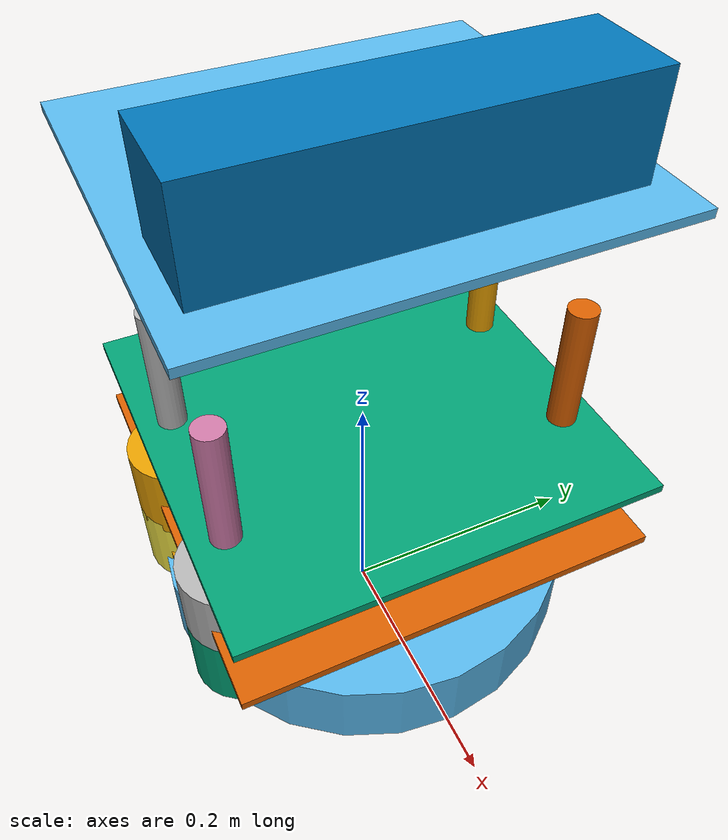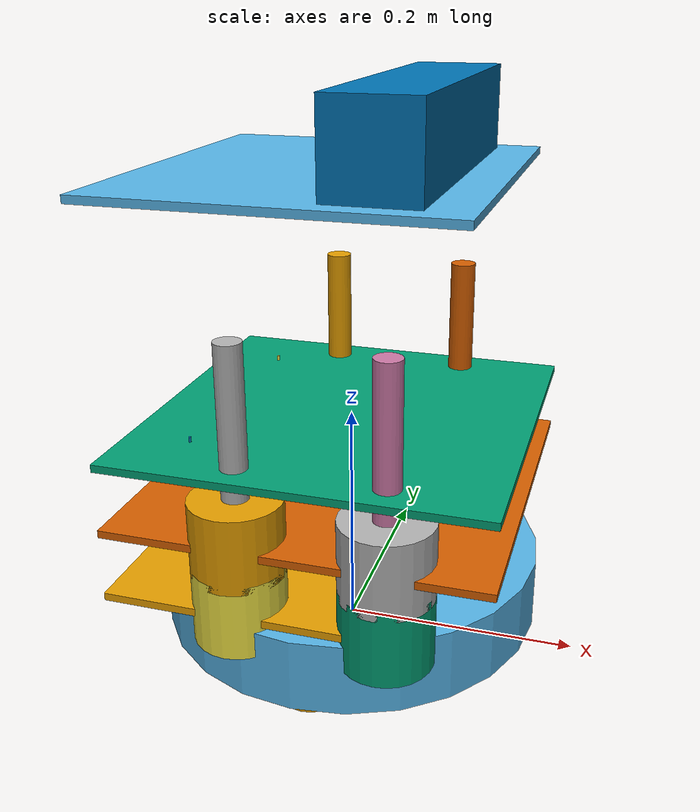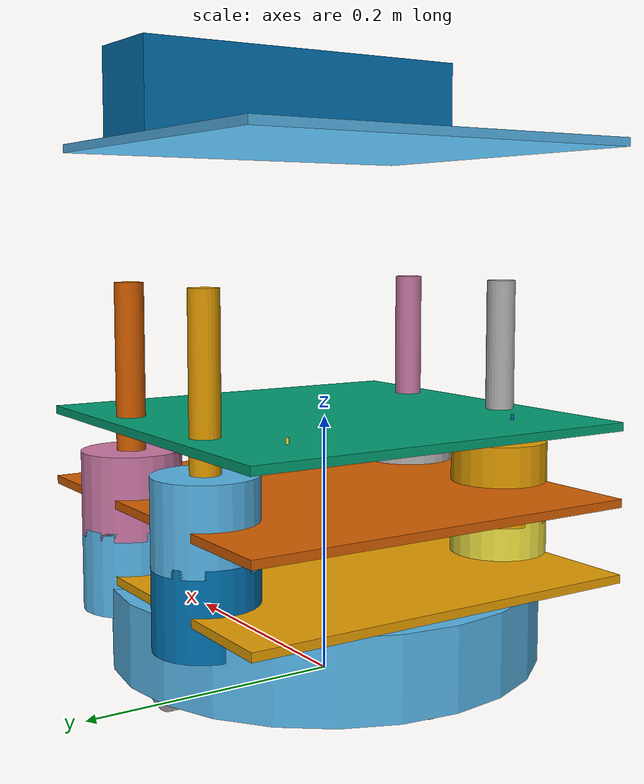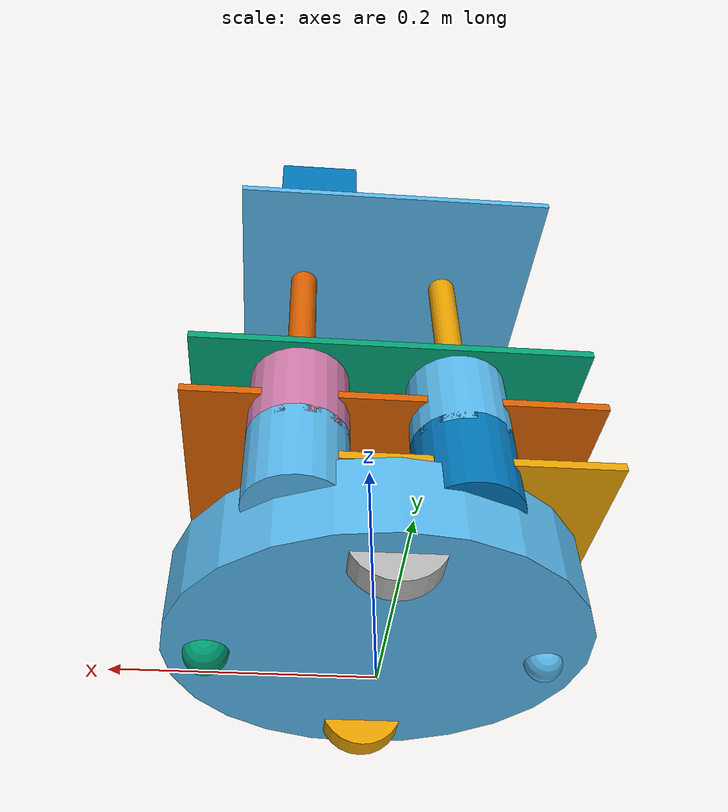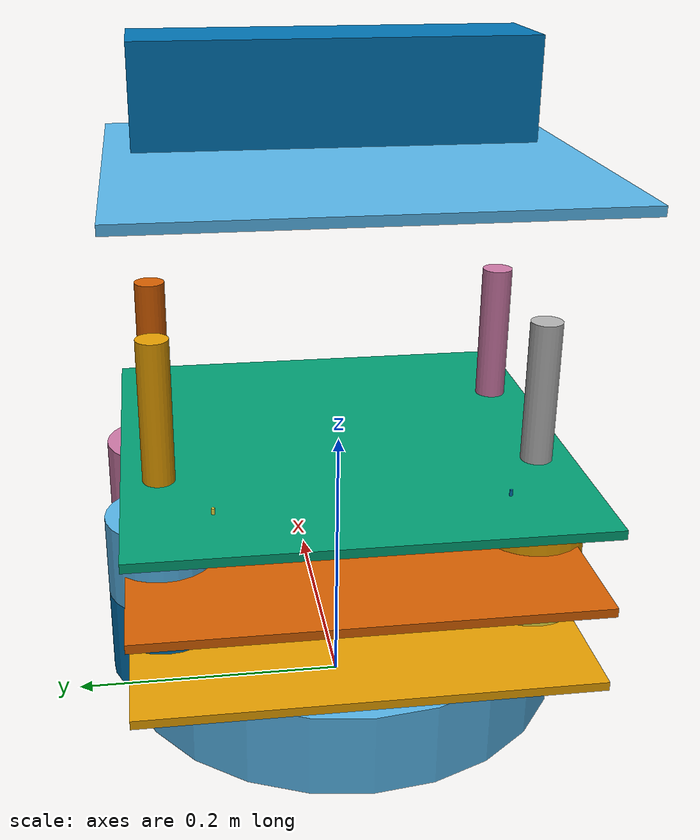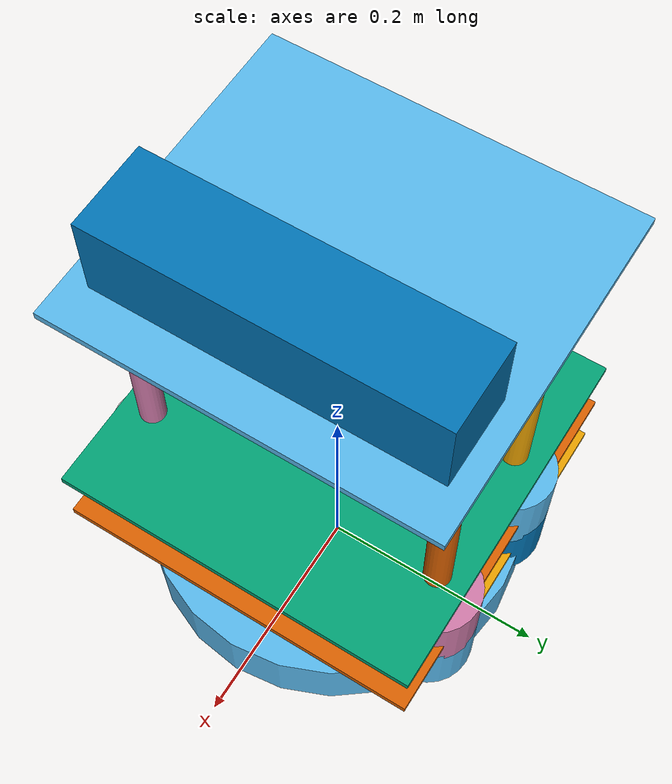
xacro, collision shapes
<?xml version="1.0" ?>
<robot name="create_1" xmlns:xacro="http://ros.org/wiki/xacro">

    <link name="base_footprint">
    <visual>
      <origin xyz="0 0 0" rpy="0 0 0" />
      <geometry>
        <box size="0.001 0.001 0.001" />
      </geometry>
    </visual>

    <collision>
      <origin xyz="0 0 0.017" rpy="0 0 0" />
      <geometry>
        <box size="0.001 0.001 0.001" />
      </geometry>
    </collision>
    </link>

    <link name="base_link">
    <inertial>
      <mass value="2" />
      <origin xyz="0 0 0.0" />
      <inertia ixx="0.01" ixy="0.0" ixz="0.0" iyy="0.01" iyz="0.0" izz="0.5" />
    </inertial>

    <visual>
      <origin xyz=" 0 0 0.0308" rpy="0 0 0" />
      <geometry>
        <mesh filename="package://gazebo_sim/meshes/create_1.dae" />
      </geometry>
    </visual>

    <collision>
      <origin xyz="0.0 0.0 0.0308" rpy="0 0 0" />
      <geometry>
        <cylinder length="0.0611632" radius="0.16495" />
      </geometry>
    </collision>
    </link>

    <link name="wall_sensor_link">
    <inertial>
      <mass value="0.01" />
      <origin xyz="0 0 0" />
      <inertia ixx="0.001" ixy="0.0" ixz="0.0" iyy="0.001" iyz="0.0" izz="0.001" />
    </inertial>
    </link>

    <link name="left_cliff_sensor_link">
    <inertial>
      <mass value="0.01" />
      <origin xyz="0 0 0" />
      <inertia ixx="0.001" ixy="0.0" ixz="0.0" iyy="0.001" iyz="0.0" izz="0.001" />
    </inertial>
    </link>

    <link name="right_cliff_sensor_link">
    <inertial>
      <mass value="0.01" />
      <origin xyz="0 0 0" />
      <inertia ixx="0.001" ixy="0.0" ixz="0.0" iyy="0.001" iyz="0.0" izz="0.001" />
    </inertial>
    </link>

    <link name="leftfront_cliff_sensor_link">
    <inertial>
      <mass value="0.01" />
      <origin xyz="0 0 0" />
      <inertia ixx="1.0" ixy="0.0" ixz="0.0" iyy="0.01" iyz="0.0" izz="0.01" />
    </inertial>
    </link>

    <link name="rightfront_cliff_sensor_link">
    <inertial>
      <mass value="0.01" />
      <origin xyz="0 0 0" />
      <inertia ixx="0.001" ixy="0.0" ixz="0.0" iyy="0.001" iyz="0.0" izz="0.001" />
    </inertial>
    </link>

    <joint name="base_footprint_joint" type="fixed">
      <origin xyz="0 0 0.017" rpy="0 0 0" />
      <parent link="base_footprint" />
      <child link="base_link" />
    </joint>

    <joint name="base_wall_sensor_joint" type="fixed">
      <origin xyz="0.09 -0.120 0.042" rpy="0 0 -1.0" />
      <parent link="base_link" />
      <child link="wall_sensor_link" />
    </joint>

    <joint name="base_left_cliff_sensor_joint" type="fixed">
      <origin xyz="0.07 0.14 0.01" rpy="0 1.57 0" />
      <parent link="base_link" />
      <child link="left_cliff_sensor_link" />
    </joint>

    <joint name="base_right_cliff_sensor_joint" type="fixed">
      <origin xyz="0.07 -0.14 0.01" rpy="0 1.57 0" />
      <parent link="base_link" />
      <child link="right_cliff_sensor_link" />
    </joint>

    <joint name="base_leftfront_cliff_sensor_joint" type="fixed">
      <origin xyz="0.15 0.04 0.01" rpy="0 1.57 0" />
      <parent link="base_link" />
      <child link="leftfront_cliff_sensor_link" />
    </joint>

    <joint name="base_rightfront_cliff_sensor_joint" type="fixed">
      <origin xyz="0.15 -0.04 0.01" rpy="0 1.57 0" />
      <parent link="base_link" />
      <child link="rightfront_cliff_sensor_link" />
    </joint>

    <!--left wheel-->
    <link name="left_wheel_link">
    <inertial>
      <origin xyz="0 0 0" />
      <mass value="0.01" />
      <inertia ixx="0.001" ixy="0.0" ixz="0.0" iyy="0.001" iyz="0.0" izz="0.001" />
    </inertial>

    <visual>
      <origin xyz="0 0 0" rpy="0 1.57 1.57" />
      <geometry>
        <cylinder radius="0.036" length="0.024" />
      </geometry>
    </visual>

    <collision>
      <origin xyz="0 0 0" rpy="0 1.57 1.57" />
      <geometry>
        <cylinder radius="0.036" length="0.024" />
      </geometry>
    </collision>
    </link>

   <joint name="left_wheel_joint" type="continuous">
      <origin xyz="0 0.13 0.015" rpy="0 0 0" />
      <parent link="base_link" />
      <child link="left_wheel_link" />
      <axis xyz="0 1 0" />
    </joint>

    <!--left wheel-->
    <link name="right_wheel_link">
    <inertial>
      <origin xyz="0 0 0" />
      <mass value="0.01" />
      <inertia ixx="0.001" ixy="0.0" ixz="0.0" iyy="0.001" iyz="0.0" izz="0.001" />
    </inertial>

    <visual>
      <origin xyz="0 0 0" rpy="0 1.57 1.57" />
      <geometry>
        <cylinder radius="0.036" length="0.024" />
      </geometry>
    </visual>

    <collision>
      <origin xyz="0 0 0" rpy="0 1.57 1.57" />
      <geometry>
        <cylinder radius="0.036" length="0.024" />
      </geometry>
    </collision>
    </link>

   <joint name="right_wheel_joint" type="continuous">
      <origin xyz="0 -0.13 0.015" rpy="0 0 0" />
      <parent link="base_link" />
      <child link="right_wheel_link" />
      <axis xyz="0 1 0" />
    </joint>

    <!-- end of wheels-->
    <link name="rear_wheel_link">
    <inertial>
      <origin xyz="0 0 0"/>
      <mass value="0.001" />
      <inertia ixx="0.0001" ixy="0.0" ixz="0.0"
        iyy="0.0001" iyz="0.0" izz="0.0001" />
    </inertial>

    <visual>
      <origin xyz="0 0 0" rpy="0 1.57 1.57"/>
      <geometry>
        <sphere radius="0.015" />
      </geometry>
    </visual>

    <collision>
      <origin xyz="0 0 0" rpy="0 1.57 1.57" />
      <geometry>
        <sphere radius="0.015" />
      </geometry>
    </collision>
    </link>
    <joint name="rear_castor_joint" type="fixed">
      <origin xyz="-0.13 0 0.0" rpy="0 0 0"/>
      <parent link="base_link"/>
      <child link="rear_wheel_link"/>
      <axis xyz="0 1 0"/>
    </joint>

    <link name="front_wheel_link">
    <inertial>
      <origin xyz="0 0 0" />
      <mass value="0.01" />
      <inertia ixx="0.001" ixy="0.0" ixz="0.0" iyy="0.001" iyz="0.0" izz="0.001" />
    </inertial>

    <visual>
      <origin xyz="0 0 0" rpy="0 1.57 1.57" />
      <geometry>
        <sphere radius="0.018" />
      </geometry>
    </visual>

    <collision>
      <origin xyz="0 0 0" rpy="0 1.57 1.57" />
      <geometry>
        <sphere radius="0.018" />
      </geometry>
    </collision>
    </link>

    <!-- fixed because there's no transmission -->
    <joint name="front_castor_joint" type="fixed">
      <origin xyz="0.13 0 0.0" rpy="0 0 0" />
      <parent link="base_link" />
      <child link="front_wheel_link" />
      <axis xyz="0 1 0" />
    </joint>

    <joint name="gyro_joint" type="fixed">
      <axis xyz="0 1 0" />
      <origin xyz="0 0 0.04" rpy="0 0 0" />
      <parent link="base_link" />
      <child link="gyro_link" />
    </joint>
    <link name="gyro_link">
    <inertial>
      <mass value="0.001" />
      <origin xyz="0 0 0" rpy="0 0 0" />
      <inertia ixx="0.0001" ixy="0" ixz="0" iyy="0.000001" iyz="0" izz="0.0001" />
    </inertial>
    </link>

    <gazebo>
      <plugin name="differential_drive_controller" filename="libgazebo_ros_diff_drive.so">
        <alwaysOn>true</alwaysOn>
        <updateRate>40</updateRate>
        <leftJoint>left_wheel_joint</leftJoint>
        <rightJoint>right_wheel_joint</rightJoint>
        <wheelSeparation>0.26</wheelSeparation>
        <wheelDiameter>0.072</wheelDiameter>
        <wheelTorque>1</wheelTorque>
        <commandTopic>cmd_vel</commandTopic>
        <odometryTopic>odom</odometryTopic>
        <odometryFrame>odom</odometryFrame>
        <robotBaseFrame>base_footprint</robotBaseFrame>
      </plugin>

      <plugin name="p3d_base_controller" filename="libgazebo_ros_p3d.so">
        <alwaysOn>true</alwaysOn>
        <updateRate>100.0</updateRate>
        <bodyName>base_link</bodyName>
        <topicName>simple_controller/absolute_position</topicName>
        <gaussianNoise>0</gaussianNoise>
        <frameName>map</frameName>
        <xyzOffsets>0 0 0</xyzOffsets>
        <rpyOffsets>0 0 0</rpyOffsets>
      </plugin>
    </gazebo>

    <gazebo reference="left_wheel_link">
      <mu1>1.0</mu1>
      <mu2>1.0</mu2>
      <kp>1000000.0</kp>
      <kd>100.0</kd>
      <minDepth>0.001</minDepth>
      <maxVel>1.0</maxVel>
    </gazebo>

    <gazebo reference="right_wheel_link">
      <mu1>1.0</mu1>
      <mu2>1.0</mu2>
      <kp>1000000.0</kp>
      <kd>100.0</kd>
      <minDepth>0.001</minDepth>
      <maxVel>1.0</maxVel>
    </gazebo>
    <gazebo reference="rear_wheel_link">
      <mu1>0.0</mu1>
      <mu2>0.0</mu2>
      <kp>1000000.0</kp>
      <kd>100.0</kd>
      <minDepth>0.001</minDepth>
      <maxVel>1.0</maxVel>
    </gazebo>

    <gazebo reference="front_wheel_link">
      <mu1>0.0</mu1>
      <mu2>0.0</mu2>
      <kp>1000000.0</kp>
      <kd>100.0</kd>
      <minDepth>0.001</minDepth>
      <maxVel>1.0</maxVel>
    </gazebo>

    <gazebo>
      <plugin name="imu_controller" filename="libgazebo_ros_imu.so">
        <alwaysOn>true</alwaysOn>
        <updateRate>30</updateRate>
        <bodyName>gyro_link</bodyName>
        <topicName>imu/data</topicName>
        <serviceName>imu/is_calibrated</serviceName>
        <gaussianNoise>0.00000289</gaussianNoise>
        <xyzOffsets>0 0 0</xyzOffsets>
        <rpyOffsets>0 0 0</rpyOffsets>
      </plugin>
    </gazebo>

    <gazebo reference="wall_sensor_link">
      <sensor type="ray" name="wall_sensor">
        <always_on>true</always_on>
        <update_rate>20.0</update_rate>
        <pose>0 0 0 0 0 0</pose>
        <visualize>false</visualize>
        <ray>
          <scan>
            <horizontal>
              <samples>1</samples>
              <resolution>1</resolution>
              <min_angle>0</min_angle>
              <max_angle>0</max_angle>
            </horizontal>
          </scan>
          <range>
            <min>0.0160</min>
            <max>0.04</max>
            <resolution>0.1</resolution>
          </range>
        </ray>
      </sensor>
    </gazebo>

    <gazebo reference="left_cliff_sensor_link">
      <sensor type="ray" name="left_cliff_sensor">
        <always_on>true</always_on>
        <update_rate>20.0</update_rate>
        <pose>0 0 0 0 0 0</pose>
        <visualize>false</visualize>
        <ray>
          <scan>
            <horizontal>
              <samples>1</samples>
              <resolution>1</resolution>
              <min_angle>0</min_angle>
              <max_angle>0</max_angle>
            </horizontal>
          </scan>
          <range>
            <min>0.01</min>
            <max>0.04</max>
            <resolution>0.1</resolution>
          </range>
        </ray>
      </sensor>
    </gazebo>

    <gazebo reference="right_cliff_sensor_link">
      <sensor type="ray" name="right_cliff_sensor">
        <always_on>true</always_on>
        <update_rate>20.0</update_rate>
        <pose>0 0 0 0 0 0</pose>
        <visualize>false</visualize>
        <ray>
          <scan>
            <horizontal>
              <samples>1</samples>
              <resolution>1</resolution>
              <min_angle>0</min_angle>
              <max_angle>0</max_angle>
            </horizontal>
          </scan>
          <range>
            <min>0.01</min>
            <max>0.04</max>
            <resolution>0.1</resolution>
          </range>
        </ray>
      </sensor>
    </gazebo>

    <gazebo reference="leftfront_cliff_sensor_link">
      <sensor type="ray" name="leftfront_cliff_sensor">
        <always_on>true</always_on>
        <update_rate>20.0</update_rate>
        <pose>0 0 0 0 0 0</pose>
        <visualize>false</visualize>
        <ray>
          <scan>
            <horizontal>
              <samples>1</samples>
              <resolution>1</resolution>
              <min_angle>0</min_angle>
              <max_angle>0</max_angle>
            </horizontal>
          </scan>
          <range>
            <min>0.01</min>
            <max>0.04</max>
            <resolution>0.1</resolution>
          </range>
        </ray>
      </sensor>
    </gazebo>

    <gazebo reference="rightfront_cliff_sensor_link">
      <sensor type="ray" name="rightfront_cliff_sensor">
        <always_on>true</always_on>
        <update_rate>20.0</update_rate>
        <pose>0 0 0 0 0 0</pose>
        <visualize>false</visualize>
        <ray>
          <scan>
            <horizontal>
              <samples>1</samples>
              <resolution>1</resolution>
              <min_angle>0</min_angle>
              <max_angle>0</max_angle>
            </horizontal>
          </scan>
          <range>
            <min>0.01</min>
            <max>0.04</max>
            <resolution>0.1</resolution>
          </range>
        </ray>
      </sensor>
    </gazebo>
    <!--circles-->
    <!-- part1-->
    <joint name="spacer_0_joint" type="fixed">
      <origin xyz="-0.00254 0.1114679 0.062992" rpy="0 0 0" />
      <parent link="base_link"/>
      <child link="spacer_0_link" />
    </joint>

    <link name="spacer_0_link">
      <inertial>
        <mass value="0.001" />
        <origin xyz="0 0 0" />
        <inertia ixx="0.0001" ixy="0.0" ixz="0.0"
          iyy="0.0001" iyz="0.0"
          izz="0.0001" />
      </inertial>

      <visual>
        <origin xyz=" 0 0 0 " rpy="0 0 0" />
        <geometry>
          <mesh filename="package://gazebo_sim/meshes/stacks/circles/68-02403-125_Spacer.dae"/>
        </geometry>
      </visual>

      <collision>
        <origin xyz="0.0 0.0 0.0" rpy="0 0 0" />
        <geometry>
          <cylinder length="0.003175" radius=".0127"/>
        </geometry>
      </collision>
    </link>

    <!-- part2-->
    <joint name="spacer_1_joint" type="fixed">
      <origin xyz="-0.00254 -0.1114679 0.062992" rpy="0 0 0" />
      <parent link="base_link"/>
      <child link="spacer_1_link" />
    </joint>

    <link name="spacer_1_link">
      <inertial>
        <mass value="0.001" />
        <origin xyz="0 0 0" />
        <inertia ixx="0.0001" ixy="0.0" ixz="0.0"
          iyy="0.0001" iyz="0.0"
          izz="0.0001" />
      </inertial>

      <visual>
        <origin xyz=" 0 0 0 " rpy="0 0 0" />
        <geometry>
          <mesh filename="package://gazebo_sim/meshes/stacks/circles/68-02403-125_Spacer.dae"/>
        </geometry>
      </visual>

      <collision>
        <origin xyz="0.0 0.0 0.0" rpy="0 0 0" />
        <geometry>
          <cylinder length="0.003175" radius=".0127"/>
        </geometry>
      </collision>
    </link>

    <!-- part3-->
    <joint name="spacer_2_joint" type="fixed">
      <origin xyz="-0.07239 -0.1114679 0.062992" rpy="0 0 0" />
      <parent link="base_link"/>
      <child link="spacer_2_link" />
    </joint>

    <link name="spacer_2_link">
      <inertial>
        <mass value="0.001" />
        <origin xyz="0 0 0" />
        <inertia ixx="0.0001" ixy="0.0" ixz="0.0"
          iyy="0.0001" iyz="0.0"
          izz="0.0001" />
      </inertial>

      <visual>
        <origin xyz=" 0 0 0 " rpy="0 0 0" />
        <geometry>
          <mesh filename="package://gazebo_sim/meshes/stacks/circles/68-02403-125_Spacer.dae"/>
        </geometry>
      </visual>

      <collision>
        <origin xyz="0.0 0.0 0.0" rpy="0 0 0" />
        <geometry>
          <cylinder length="0.003175" radius=".0127"/>
        </geometry>
      </collision>
    </link>

    <!-- part4-->
    <joint name="spacer_3_joint" type="fixed">
      <origin xyz="-0.07239 0.1114679 0.062992" rpy="0 0 0" />
      <parent link="base_link"/>
      <child link="spacer_3_link" />
    </joint>

    <link name="spacer_3_link">
      <inertial>
        <mass value="0.001" />
        <origin xyz="0 0 0" />
        <inertia ixx="0.0001" ixy="0.0" ixz="0.0"
          iyy="0.0001" iyz="0.0"
          izz="0.0001" />
      </inertial>

      <visual>
        <origin xyz=" 0 0 0 " rpy="0 0 0" />
        <geometry>
          <mesh filename="package://gazebo_sim/meshes/stacks/circles/68-02403-125_Spacer.dae"/>
        </geometry>
      </visual>

      <collision>
        <origin xyz="0.0 0.0 0.0" rpy="0 0 0" />
        <geometry>
          <cylinder length="0.003175" radius=".0127"/>
        </geometry>
      </collision>
    </link>
    <!--end parts-->

    <joint name="plate_0_joint" type="fixed">
      <origin xyz="-0.04334 0  0.06775704" rpy="0 0 0" />
      <parent link="base_link"/>
      <child link="plate_0_link" />
    </joint>

    <link name="plate_0_link">
      <inertial>
        <mass value="0.01" />
        <origin xyz="0 0 0" />
        <inertia ixx="0.01" ixy="0.0" ixz="0.0"
          iyy="0.01" iyz="0.0"
          izz="0.01" />
      </inertial>

      <visual>
        <origin xyz=" 0 0 0 " rpy="0 0 0" />
        <geometry>
          <mesh filename="package://gazebo_sim/meshes/stacks/circles/plate_0_logo.dae"/>
        </geometry>
      </visual>

      <collision>
        <origin xyz="0.0 0.0 0.0" rpy="0 0 0" />
        <geometry>
          <box size="0.233502 0.314845 0.006401"/>
        </geometry>
      </collision>
    </link>

    <!--standoff1-->
    <joint name="standoff_2in_0_joint" type="fixed">
      <origin xyz="0.0676402 0.1314196 0.0709803" rpy="0 0 0" />
      <parent link="base_link"/>
      <child link="standoff_2in_0_link" />
    </joint>

    <link name="standoff_2in_0_link">
      <inertial>
        <mass value="0.001" />
        <origin xyz="0 0 0" />
        <inertia ixx="0.0001" ixy="0.0" ixz="0.0"
          iyy="0.0001" iyz="0.0"
          izz="0.0001" />
      </inertial>

      <visual>
        <origin xyz=" 0 0 0 " rpy="0 0 0" />
        <geometry>
          <mesh filename="package://gazebo_sim/meshes/stacks/circles/68-04552-2000-RA_Turtlebot_M-F_Standoff.dae"/>
        </geometry>
      </visual>

      <collision>
        <origin xyz="0.0 0.0 0.0" rpy="0 0 0" />
        <geometry>
          <cylinder length="0.0635" radius="0.0381"/>
        </geometry>
      </collision>
    </link>

    <!--standoff2-->
    <joint name="standoff_2in_1_joint" type="fixed">
      <origin xyz="0.0676402 -0.1314196 0.0709803" rpy="0 0 0" />
      <parent link="base_link"/>
      <child link="standoff_2in_1_link" />
    </joint>

    <link name="standoff_2in_1_link">
      <inertial>
        <mass value="0.001" />
        <origin xyz="0 0 0" />
        <inertia ixx="0.0001" ixy="0.0" ixz="0.0"
          iyy="0.0001" iyz="0.0"
          izz="0.0001" />
      </inertial>

      <visual>
        <origin xyz=" 0 0 0 " rpy="0 0 0" />
        <geometry>
          <mesh filename="package://gazebo_sim/meshes/stacks/circles/68-04552-2000-RA_Turtlebot_M-F_Standoff.dae"/>
        </geometry>
      </visual>

      <collision>
        <origin xyz="0.0 0.0 0.0" rpy="0 0 0" />
        <geometry>
          <cylinder length="0.0635" radius="0.0381"/>
        </geometry>
      </collision>
    </link>

    <!--standoff3-->
    <joint name="standoff_2in_2_joint" type="fixed">
      <origin xyz="-0.052832 -0.1314196 0.0709803" rpy="0 0 0" />
      <parent link="base_link"/>
      <child link="standoff_2in_2_link" />
    </joint>

    <link name="standoff_2in_2_link">
      <inertial>
        <mass value="0.001" />
        <origin xyz="0 0 0" />
        <inertia ixx="0.0001" ixy="0.0" ixz="0.0"
          iyy="0.0001" iyz="0.0"
          izz="0.0001" />
      </inertial>

      <visual>
        <origin xyz=" 0 0 0 " rpy="0 0 0" />
        <geometry>
          <mesh filename="package://gazebo_sim/meshes/stacks/circles/68-04552-2000-RA_Turtlebot_M-F_Standoff.dae"/>
        </geometry>
      </visual>

      <collision>
        <origin xyz="0.0 0.0 0.0" rpy="0 0 0" />
        <geometry>
          <cylinder length="0.0635" radius="0.0381"/>
        </geometry>
      </collision>
    </link>

    <!--standoff4-->
    <joint name="standoff_2in_3_joint" type="fixed">
      <origin xyz="-0.052832 0.1314196 0.0709803" rpy="0 0 0" />
      <parent link="base_link"/>
      <child link="standoff_2in_3_link" />
    </joint>

    <link name="standoff_2in_3_link">
      <inertial>
        <mass value="0.001" />
        <origin xyz="0 0 0" />
        <inertia ixx="0.0001" ixy="0.0" ixz="0.0"
          iyy="0.0001" iyz="0.0"
          izz="0.0001" />
      </inertial>

      <visual>
        <origin xyz=" 0 0 0 " rpy="0 0 0" />
        <geometry>
          <mesh filename="package://gazebo_sim/meshes/stacks/circles/68-04552-2000-RA_Turtlebot_M-F_Standoff.dae"/>
        </geometry>
      </visual>

      <collision>
        <origin xyz="0.0 0.0 0.0" rpy="0 0 0" />
        <geometry>
          <cylinder length="0.0635" radius="0.0381"/>
        </geometry>
      </collision>
    </link>
    <!--standoffs end-->

    <joint name="plate_1_joint" type="fixed">
      <origin xyz="0.04068 0 0.05715" rpy="0 0 0" />
      <parent link="plate_0_link"/>
      <child link="plate_1_link" />
    </joint>

    <link name="plate_1_link">
      <inertial>
        <mass value="0.1" />
        <origin xyz="0 0 0" />
        <inertia ixx="0.01" ixy="0.0" ixz="0.0"
          iyy="0.01" iyz="0.0"
          izz="0.01" />
      </inertial>

      <visual>
        <origin xyz=" 0 0 0 " rpy="0 0 0" />
        <geometry>
          <mesh filename="package://gazebo_sim/meshes/stacks/circles/plate_1_logo.dae"/>
        </geometry>
      </visual>

      <collision>
        <origin xyz="0.0 0.0 0.0" rpy="0 0 0" />
        <geometry>
          <box size="0.314856 0.314856 0.006401"/>
        </geometry>
      </collision>
    </link>

    <!--standoff2_1-->
    <joint name="standoff_2in_4_joint" type="fixed">
      <origin xyz="0 0 0.05715" rpy="0 0 0" />
      <parent link="standoff_2in_0_link"/>
      <child link="standoff_2in_4_link" />
    </joint>

    <link name="standoff_2in_4_link">
      <inertial>
        <mass value="0.001" />
        <origin xyz="0 0 0" />
        <inertia ixx="0.0001" ixy="0.0" ixz="0.0"
          iyy="0.0001" iyz="0.0"
          izz="0.0001" />
      </inertial>

      <visual>
        <origin xyz=" 0 0 0 " rpy="0 0 0" />
        <geometry>
          <mesh filename="package://gazebo_sim/meshes/stacks/circles/68-04552-2000-RA_Turtlebot_M-F_Standoff.dae"/>
        </geometry>
      </visual>

      <collision>
        <origin xyz="0.0 0.0 0.0" rpy="0 0 0" />
        <geometry>
          <cylinder length="0.0635" radius="0.0381"/>
        </geometry>
      </collision>
    </link>

    <!--standoff2_2-->
    <joint name="standoff_2in_5_joint" type="fixed">
      <origin xyz="0 0 0.05715" rpy="0 0 0" />
      <parent link="standoff_2in_1_link"/>
      <child link="standoff_2in_5_link" />
    </joint>

    <link name="standoff_2in_5_link">
      <inertial>
        <mass value="0.001" />
        <origin xyz="0 0 0" />
        <inertia ixx="0.0001" ixy="0.0" ixz="0.0"
          iyy="0.0001" iyz="0.0"
          izz="0.0001" />
      </inertial>

      <visual>
        <origin xyz=" 0 0 0 " rpy="0 0 0" />
        <geometry>
          <mesh filename="package://gazebo_sim/meshes/stacks/circles/68-04552-2000-RA_Turtlebot_M-F_Standoff.dae"/>
        </geometry>
      </visual>

      <collision>
        <origin xyz="0.0 0.0 0.0" rpy="0 0 0" />
        <geometry>
          <cylinder length="0.0635" radius="0.0381"/>
        </geometry>
      </collision>
    </link>

    <!--standoff2_3-->
    <joint name="standoff_2in_6_joint" type="fixed">
      <origin xyz="0 0 0.05715" rpy="0 0 0" />
      <parent link="standoff_2in_2_link"/>
      <child link="standoff_2in_6_link" />
    </joint>

    <link name="standoff_2in_6_link">
      <inertial>
        <mass value="0.001" />
        <origin xyz="0 0 0" />
        <inertia ixx="0.0001" ixy="0.0" ixz="0.0"
          iyy="0.0001" iyz="0.0"
          izz="0.0001" />
      </inertial>

      <visual>
        <origin xyz=" 0 0 0 " rpy="0 0 0" />
        <geometry>
          <mesh filename="package://gazebo_sim/meshes/stacks/circles/68-04552-2000-RA_Turtlebot_M-F_Standoff.dae"/>
        </geometry>
      </visual>

      <collision>
        <origin xyz="0.0 0.0 0.0" rpy="0 0 0" />
        <geometry>
          <cylinder length="0.0635" radius="0.0381"/>
        </geometry>
      </collision>
    </link>

    <!--standoff2_4-->
    <joint name="standoff_2in_7_joint" type="fixed">
      <origin xyz="0 0 0.05715" rpy="0 0 0" />
      <parent link="standoff_2in_3_link"/>
      <child link="standoff_2in_7_link" />
    </joint>

    <link name="standoff_2in_7_link">
      <inertial>
        <mass value="0.001" />
        <origin xyz="0 0 0" />
        <inertia ixx="0.0001" ixy="0.0" ixz="0.0"
          iyy="0.0001" iyz="0.0"
          izz="0.0001" />
      </inertial>

      <visual>
        <origin xyz=" 0 0 0 " rpy="0 0 0" />
        <geometry>
          <mesh filename="package://gazebo_sim/meshes/stacks/circles/68-04552-2000-RA_Turtlebot_M-F_Standoff.dae"/>
        </geometry>
      </visual>

      <collision>
        <origin xyz="0.0 0.0 0.0" rpy="0 0 0" />
        <geometry>
          <cylinder length="0.0635" radius="0.0381"/>
        </geometry>
      </collision>
    </link>

    <!--standoff2 end-->

    <joint name="plate_2_joint" type="fixed">
      <origin xyz="0 0 0.0572008" rpy="0 0 0" />
      <parent link="plate_1_link"/>
      <child link="plate_2_link" />
    </joint>

    <link name="plate_2_link">
      <inertial>
        <mass value="0.01" />
        <origin xyz="0 0 0" />
        <inertia ixx="0.001" ixy="0.0" ixz="0.0"
          iyy="0.001" iyz="0.0"
          izz="0.001" />
      </inertial>

      <visual>
        <origin xyz=" 0 0 0 " rpy="0 0 0" />
        <geometry>
          <mesh filename="package://gazebo_sim/meshes/stacks/circles/plate_1_logo.dae"/>
        </geometry>
      </visual>

      <collision>
        <origin xyz="0.0 0.0 0.0" rpy="0 0 0" />
        <geometry>
          <box size="0.314856 0.314856 0.006401"/>
        </geometry>
      </collision>
    </link>

    <joint name="standoff_kinect_0_joint" type="fixed">
      <origin xyz="-0.1024382 0.098 0.0032004" rpy="0 0 0" />
      <parent link="plate_2_link"/>
      <child link="standoff_kinect_0_link" />
    </joint>

    <link name="standoff_kinect_0_link">
      <inertial>
        <mass value="0.001" />
        <origin xyz="0 0 0" />
        <inertia ixx="0.0001" ixy="0.0" ixz="0.0"
          iyy="0.0001" iyz="0.0"
          izz="0.0001" />
      </inertial>

      <visual>
        <origin xyz=" 0 0 0 " rpy="0 0 0" />
        <geometry>
          <mesh filename="package://gazebo_sim/meshes/stacks/circles/68-04556-RA_Kinect_Standoff_Assy.dae"/>
        </geometry>
      </visual>

      <collision>
        <origin xyz="0.0 0.0 0.0" rpy="0 0 0" />
        <geometry>
          <cylinder length="0.008585" radius="0.001111"/>
        </geometry>
      </collision>
    </link>

    <joint name="standoff_kinect_1_joint" type="fixed">
      <origin xyz="-0.1024382 -0.098 0.0032004" rpy="0 0 0" />
      <parent link="plate_2_link"/>
      <child link="standoff_kinect_1_link" />
    </joint>

    <link name="standoff_kinect_1_link">
      <inertial>
        <mass value="0.001" />
        <origin xyz="0 0 0" />
        <inertia ixx="0.0001" ixy="0.0" ixz="0.0"
          iyy="0.0001" iyz="0.0"
          izz="0.0001" />
      </inertial>

      <visual>
        <origin xyz=" 0 0 0 " rpy="0 0 0" />
        <geometry>
          <mesh filename="package://gazebo_sim/meshes/stacks/circles/68-04556-RA_Kinect_Standoff_Assy.dae"/>
        </geometry>
      </visual>

      <collision>
        <origin xyz="0.0 0.0 0.0" rpy="0 0 0" />
        <geometry>
          <cylinder length="0.008585" radius="0.001111"/>
        </geometry>
      </collision>
    </link>

    <joint name="standoff_8in_0_joint" type="fixed">
      <origin xyz="0 0 0.05715" rpy="0 0 0" />
      <parent link="standoff_2in_4_link"/>
      <child link="standoff_8in_0_link" />
    </joint>

    <link name="standoff_8in_0_link">
      <inertial>
        <mass value="0.001" />
        <origin xyz="0 0 0" />
        <inertia ixx="0.0001" ixy="0.0" ixz="0.0"
          iyy="0.0001" iyz="0.0"
          izz="0.0001" />
      </inertial>

      <visual>
        <origin xyz=" 0 0 0 " rpy="0 0 0" />
        <geometry>
          <mesh filename="package://gazebo_sim/meshes/stacks/circles/68-02421-8000-RA_Turtlebot_F-F_Standoff.dae"/>
        </geometry>
      </visual>

      <collision>
        <origin xyz="0.0 0.0 0.0" rpy="0 0 0" />
        <geometry>
          <cylinder length="0.2032" radius="0.011113"/>
        </geometry>
      </collision>
    </link>

    <joint name="standoff_8in_1_joint" type="fixed">
      <origin xyz="0 0 0.05715" rpy="0 0 0" />
      <parent link="standoff_2in_5_link"/>
      <child link="standoff_8in_1_link" />
    </joint>

    <link name="standoff_8in_1_link">
      <inertial>
        <mass value="0.001" />
        <origin xyz="0 0 0" />
        <inertia ixx="0.0001" ixy="0.0" ixz="0.0"
          iyy="0.0001" iyz="0.0"
          izz="0.0001" />
      </inertial>

      <visual>
        <origin xyz=" 0 0 0 " rpy="0 0 0" />
        <geometry>
          <mesh filename="package://gazebo_sim/meshes/stacks/circles/68-02421-8000-RA_Turtlebot_F-F_Standoff.dae"/>
        </geometry>
      </visual>

      <collision>
        <origin xyz="0.0 0.0 0.0" rpy="0 0 0" />
        <geometry>
          <cylinder length="0.2032" radius="0.011113"/>
        </geometry>
      </collision>
    </link>

    <joint name="standoff_8in_2_joint" type="fixed">
      <origin xyz="0 0 0.05715" rpy="0 0 0" />
      <parent link="standoff_2in_6_link"/>
      <child link="standoff_8in_2_link" />
    </joint>

    <link name="standoff_8in_2_link">
      <inertial>
        <mass value="0.001" />
        <origin xyz="0 0 0" />
        <inertia ixx="0.0001" ixy="0.0" ixz="0.0"
          iyy="0.0001" iyz="0.0"
          izz="0.0001" />
      </inertial>

      <visual>
        <origin xyz=" 0 0 0 " rpy="0 0 0" />
        <geometry>
          <mesh filename="package://gazebo_sim/meshes/stacks/circles/68-02421-8000-RA_Turtlebot_F-F_Standoff.dae"/>
        </geometry>
      </visual>

      <collision>
        <origin xyz="0.0 0.0 0.0" rpy="0 0 0" />
        <geometry>
          <cylinder length="0.2032" radius="0.011113"/>
        </geometry>
      </collision>
    </link>

    <joint name="standoff_8in_3_joint" type="fixed">
      <origin xyz="0 0 0.05715" rpy="0 0 0" />
      <parent link="standoff_2in_7_link"/>
      <child link="standoff_8in_3_link" />
    </joint>

    <link name="standoff_8in_3_link">
      <inertial>
        <mass value="0.001" />
        <origin xyz="0 0 0" />
        <inertia ixx="0.0001" ixy="0.0" ixz="0.0"
          iyy="0.0001" iyz="0.0"
          izz="0.0001" />
      </inertial>

      <visual>
        <origin xyz=" 0 0 0 " rpy="0 0 0" />
        <geometry>
          <mesh filename="package://gazebo_sim/meshes/stacks/circles/68-02421-8000-RA_Turtlebot_F-F_Standoff.dae"/>
        </geometry>
      </visual>

      <collision>
        <origin xyz="0.0 0.0 0.0" rpy="0 0 0" />
        <geometry>
          <cylinder length="0.2032" radius="0.011113"/>
        </geometry>
      </collision>
    </link>
    <!--end-->

    <joint name="plate_3_joint" type="fixed">
      <origin xyz="-0.01316 0 0.2063496" rpy="0 0 0" />
      <parent link="plate_2_link"/>
      <child link="plate_3_link" />
    </joint>

    <link name="plate_3_link">
      <inertial>
        <mass value="0.01" />
        <origin xyz="0 0 0" />
        <inertia ixx="0.0001" ixy="0.0" ixz="0.0"
          iyy="0.0001" iyz="0.0"
          izz="0.0001" />
      </inertial>

      <visual>
        <origin xyz=" 0 0 0 " rpy="0 0 0" />
        <geometry>
          <mesh filename="package://gazebo_sim/meshes/stacks/circles/plate_2_logo.dae"/>
        </geometry>
      </visual>

      <collision>
        <origin xyz="0.0 0.0 0.0" rpy="0 0 0" />
        <geometry>
          <box size="0.288 0.315 0.006401"/>
        </geometry>
      </collision>
    </link>
    <!-- end of circles-->

    <!--sensor kinect-->
    <joint name="camera_rgb_joint" type="fixed">
      <origin xyz="0.087 -0.0125 0.4425" rpy="0 0 0"/>
      <parent link="base_link"/>
      <child link="camera_rgb_frame" />
    </joint>
    <link name="camera_rgb_frame"/>

    <joint name="camera_rgb_optical_joint" type="fixed">
      <origin xyz="0 0 0" rpy="-1.57 0 1.57" />
      <parent link="camera_rgb_frame" />
      <child link="camera_rgb_optical_frame" />
    </joint>
    <link name="camera_rgb_optical_frame"/>

    <joint name="camera_joint" type="fixed">
      <origin xyz="-0.031 0.0125 -0.016" rpy="0 0 0"/>
      <parent link="camera_rgb_frame"/>
      <child link="camera_link"/>
    </joint>
      <link name="camera_link">
      <visual>
       <origin xyz="0 0 0" rpy="0 0 1.57"/>
        <geometry>
         <mesh filename="package://gazebo_sim/meshes/sensors/kinect.dae"/>
        </geometry>
      </visual>
  	  <collision>
        <origin xyz="0.0 0.0 0.0" rpy="0 0 0"/>
  	    <geometry>
  	      <box size="0.07271 0.27794 0.073"/>
  	    </geometry>
  	  </collision>
      <inertial>
        <mass value="0.564" />
        <origin xyz="0 0 0" />
        <inertia ixx="0.003881243" ixy="0.0" ixz="0.0"
                 iyy="0.000498940" iyz="0.0"
                 izz="0.003879257" />
      </inertial>
    </link>

	<joint name="camera_depth_joint" type="fixed">
	  <origin xyz="0 0.0250 0" rpy="0 0 0" />
	  <parent link="camera_rgb_frame" />
	  <child link="camera_depth_frame" />
	</joint>
	<link name="camera_depth_frame"/>

	<joint name="camera_depth_optical_joint" type="fixed">
	  <origin xyz="0 0 0" rpy="-1.57 0 -1.57" />
	  <parent link="camera_depth_frame" />
	  <child link="camera_depth_optical_frame" />
	</joint>
	<link name="camera_depth_optical_frame"/>

	<!-- Kinect sensor for simulation -->

	<gazebo reference="camera_link">
        <sensor type="depth" name="camera">
        <always_on>true</always_on>
        <update_rate>20.0</update_rate>
        <camera>
          <horizontal_fov>1.047</horizontal_fov>
          <image>
            <format>B8G8R8</format>
            <width>640</width>
            <height>480</height>
          </image>
          <clip>
            <near>0.05</near>
            <far>8.0</far>
          </clip>
        </camera>
        <plugin name="kinect_camera_controller" filename="libgazebo_ros_openni_kinect.so">
          <cameraName>camera</cameraName>
          <alwaysOn>true</alwaysOn>
          <updateRate>10</updateRate>
          <imageTopicName>rgb/image_raw</imageTopicName>
          <depthImageTopicName>depth/image_raw</depthImageTopicName>
          <pointCloudTopicName>depth/points</pointCloudTopicName>
          <cameraInfoTopicName>rgb/camera_info</cameraInfoTopicName>
          <depthImageCameraInfoTopicName>depth/camera_info</depthImageCameraInfoTopicName>
          <frameName>camera_depth_optical_frame</frameName>
          <baseline>0.1</baseline>
          <distortion_k1>0.0</distortion_k1>
          <distortion_k2>0.0</distortion_k2>
          <distortion_k3>0.0</distortion_k3>
          <distortion_t1>0.0</distortion_t1>
          <distortion_t2>0.0</distortion_t2>
          <pointCloudCutoff>0.4</pointCloudCutoff>
        </plugin>
      </sensor>
    </gazebo>

    <!--flag for leader-->
    <link name="green_flag">
      <visual>
       <origin xyz="0 0 0" rpy="0 0 1.57"/>
        <geometry>
         <box size="0.5 0.3 0.001"/>
        </geometry>
      </visual>
    </link>
    <joint name="green_flag_joint" type="fixed">
	  <origin xyz="-0.165 0 0.25" rpy="-1.57 0 -1.57" />
	  <parent link="base_link" />
	  <child link="green_flag" />
	  </joint>

    <gazebo reference="green_flag">
                <material>Gazebo/Green</material>
    </gazebo>

    <link name="green_flag-1">
      <visual>
       <origin xyz="0 0 0" rpy="0 0 1.57"/>
        <geometry>
         <box size="0.5 0.001 0.3"/>
        </geometry>
      </visual>
    </link>
    <joint name="green_flag_joint_1" type="fixed">
	  <origin xyz="0 -0.165 0.25" rpy="-1.57 0 -1.57" />
	  <parent link="base_link" />
	  <child link="green_flag-1" />
	  </joint>

    <gazebo reference="green_flag-1">
                <material>Gazebo/Green</material>
    </gazebo>

    <link name="green_flag-2">
      <visual>
       <origin xyz="0 0 0" rpy="0 0 1.57"/>
        <geometry>
         <box size="0.5 0.001 0.3"/>
        </geometry>
      </visual>
    </link>
    <joint name="green_flag_joint_2" type="fixed">
	  <origin xyz="0 0.165 0.25" rpy="-1.57 0 -1.57" />
	  <parent link="base_link" />
	  <child link="green_flag-2" />
	  </joint>

    <gazebo reference="green_flag-2">
                <material>Gazebo/Green</material>
    </gazebo>

</robot>
